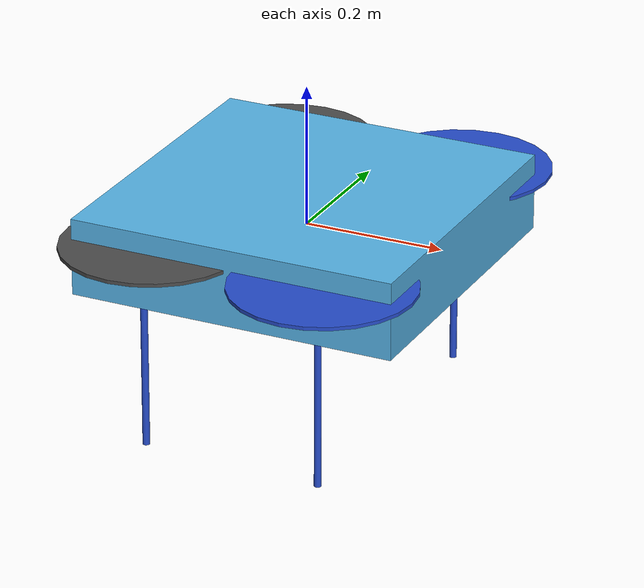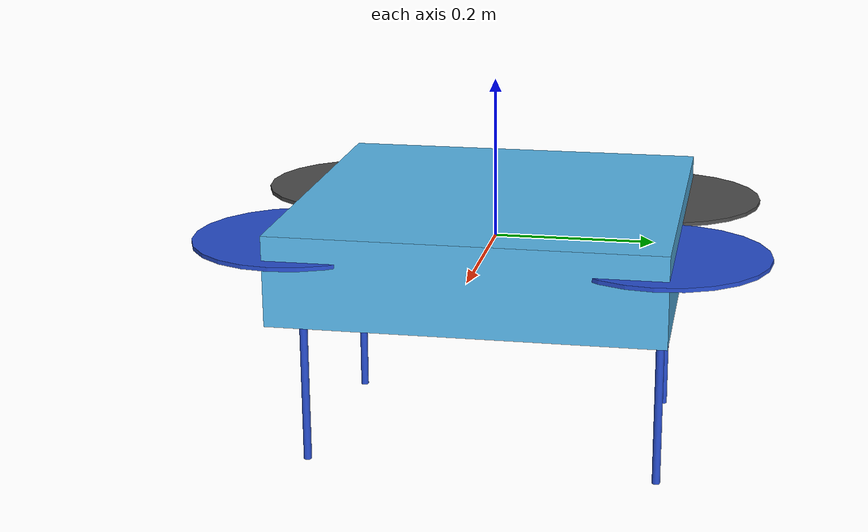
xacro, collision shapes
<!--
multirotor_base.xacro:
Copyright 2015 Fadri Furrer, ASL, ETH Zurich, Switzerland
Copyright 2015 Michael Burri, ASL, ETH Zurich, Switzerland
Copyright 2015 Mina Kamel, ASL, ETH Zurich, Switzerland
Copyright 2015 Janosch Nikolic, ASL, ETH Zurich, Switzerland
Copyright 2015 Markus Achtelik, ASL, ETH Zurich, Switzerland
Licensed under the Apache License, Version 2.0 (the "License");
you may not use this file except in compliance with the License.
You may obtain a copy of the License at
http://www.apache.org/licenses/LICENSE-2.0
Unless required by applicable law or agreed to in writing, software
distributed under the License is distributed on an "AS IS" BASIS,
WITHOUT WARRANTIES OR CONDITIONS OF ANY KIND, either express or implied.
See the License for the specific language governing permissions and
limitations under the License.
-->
<?xml version="1.0"?>

<robot name="iris"
    xmlns:xacro="http://ros.org/wiki/xacro">
    <!-- Properties -->
    <xacro:property name="namespace" value="" />
    <xacro:property name="rotor_velocity_slowdown_sim" value="10" />
    <xacro:property name="mesh_file" value="iris.stl" />
    <xacro:property name="mesh_scale" value="1 1 1"/>
    <xacro:property name="mesh_scale_prop" value="1 1 1"/>
    <xacro:property name="mass" value="1.5" />
    <!-- [kg] -->
    <xacro:property name="body_width" value="0.47" />
    <xacro:property name="body_height" value="0.11" />
    <xacro:property name="mass_rotor" value="0.005" />
    <!-- [kg] -->
    <xacro:property name="arm_length_front_x" value="0.13" />
    <xacro:property name="arm_length_back_x" value="0.13" />
    <xacro:property name="arm_length_front_y" value="0.22" />
    <xacro:property name="arm_length_back_y" value="0.2" />
    <xacro:property name="rotor_offset_top" value="0.023" />
    <xacro:property name="radius_rotor" value="0.128" />
    <xacro:property name="motor_constant" value="8.54858e-06" />
    <!-- [kg.m/s^2] -->
    <xacro:property name="moment_constant" value="0.06" />
    <xacro:property name="time_constant_up" value="0.0125" />
    <xacro:property name="time_constant_down" value="0.025" />
    <xacro:property name="max_rot_velocity" value="1100" />
    <!-- [rad/s] -->
    <xacro:property name="sin30" value="0.5" />
    <xacro:property name="cos30" value="0.866025403784" />
    <xacro:property name="sqrt2" value="1.4142135623730951" />
    <xacro:property name="rotor_drag_coefficient" value="1.75e-04" />
    <xacro:property name="rolling_moment_coefficient" value="0.000001" />
    <xacro:property name="color" value="Blue" />

    <!-- Property Blocks -->
    <xacro:property name="body_inertia">
        <inertia ixx="${1/12 * mass * (body_height * body_height + body_width * body_width)}" iyy="${1/12 * mass * (body_height * body_height + body_width * body_width)}" izz="${1/12 * mass * (body_width * body_width + body_width * body_width)}" ixy="0.0" ixz="0.0" iyz="0.0" />
        <!-- [kg.m^2] [kg.m^2] [kg.m^2] [kg.m^2] [kg.m^2] [kg.m^2] -->
    </xacro:property>

    <!-- inertia of a single rotor, assuming it is a cuboid. Height=3mm, width=15mm -->
    <xacro:property name="rotor_inertia">
        <inertia ixx="${1/12 * mass_rotor * (0.015 * 0.015 + 0.003 * 0.003) * rotor_velocity_slowdown_sim}" iyy="${1/12 * mass_rotor * (4 * radius_rotor * radius_rotor + 0.003 * 0.003) * rotor_velocity_slowdown_sim}" izz="${1/12 * mass_rotor * (4 * radius_rotor * radius_rotor + 0.015 * 0.015) * rotor_velocity_slowdown_sim}" ixy="0.0" ixz="0.0" iyz="0.0" />
        <!-- [kg.m^2] [kg.m^2] [kg.m^2] [kg.m^2] [kg.m^2] [kg.m^2] -->
    </xacro:property>

    <!-- Included URDF Files -->
    <xacro:include filename="$(find px4_controller)/models/multirotor_base.xacro" />

    <!-- Instantiate multirotor_base_macro once -->
    <xacro:multirotor_base_macro robot_namespace="${namespace}" mass="${mass}" body_width="${body_width}" body_height="${body_height}" mesh_file="${mesh_file}" mesh_scale="${mesh_scale}" color="${color}">
        <xacro:insert_block name="body_inertia" />
    </xacro:multirotor_base_macro>

    <!-- Instantiate rotors -->
    <xacro:vertical_rotor robot_namespace="${namespace}" suffix="front_right" direction="ccw" motor_constant="${motor_constant}" moment_constant="${moment_constant}" parent="base_link" mass_rotor="${mass_rotor}" radius_rotor="${radius_rotor}" time_constant_up="${time_constant_up}" time_constant_down="${time_constant_down}" max_rot_velocity="${max_rot_velocity}" motor_number="0" rotor_drag_coefficient="${rotor_drag_coefficient}" rolling_moment_coefficient="${rolling_moment_coefficient}" mesh="iris_prop" mesh_scale="${mesh_scale_prop}" color="Blue">
        <origin xyz="${arm_length_front_x} -${arm_length_front_y} ${rotor_offset_top}" rpy="0 0 0" />
        <xacro:insert_block name="rotor_inertia" />
    </xacro:vertical_rotor>

    <xacro:vertical_rotor robot_namespace="${namespace}" suffix="back_left" direction="ccw" motor_constant="${motor_constant}" moment_constant="${moment_constant}" parent="base_link" mass_rotor="${mass_rotor}" radius_rotor="${radius_rotor}" time_constant_up="${time_constant_up}" time_constant_down="${time_constant_down}" max_rot_velocity="${max_rot_velocity}" motor_number="1" rotor_drag_coefficient="${rotor_drag_coefficient}" rolling_moment_coefficient="${rolling_moment_coefficient}" mesh="iris_prop" mesh_scale="${mesh_scale_prop}" color="DarkGrey">
        <origin xyz="-${arm_length_back_x} ${arm_length_back_y} ${rotor_offset_top}" rpy="0 0 0" />
        <xacro:insert_block name="rotor_inertia" />
    </xacro:vertical_rotor>

    <xacro:vertical_rotor robot_namespace="${namespace}" suffix="front_left" direction="cw" motor_constant="${motor_constant}" moment_constant="${moment_constant}" parent="base_link" mass_rotor="${mass_rotor}" radius_rotor="${radius_rotor}" time_constant_up="${time_constant_up}" time_constant_down="${time_constant_down}" max_rot_velocity="${max_rot_velocity}" motor_number="2" rotor_drag_coefficient="${rotor_drag_coefficient}" rolling_moment_coefficient="${rolling_moment_coefficient}" mesh="iris_prop" mesh_scale="${mesh_scale_prop}" color="Blue">
        <origin xyz="${arm_length_front_x} ${arm_length_front_y} ${rotor_offset_top}" rpy="0 0 0" />
        <xacro:insert_block name="rotor_inertia" />
    </xacro:vertical_rotor>

    <xacro:vertical_rotor robot_namespace="${namespace}" suffix="back_right" direction="cw" motor_constant="${motor_constant}" moment_constant="${moment_constant}" parent="base_link" mass_rotor="${mass_rotor}" radius_rotor="${radius_rotor}" time_constant_up="${time_constant_up}" time_constant_down="${time_constant_down}" max_rot_velocity="${max_rot_velocity}" motor_number="3" rotor_drag_coefficient="${rotor_drag_coefficient}" rolling_moment_coefficient="${rolling_moment_coefficient}" mesh="iris_prop" mesh_scale="${mesh_scale_prop}" color="DarkGrey">
        <origin xyz="-${arm_length_back_x} -${arm_length_back_y} ${rotor_offset_top}" rpy="0 0 0" />
        <xacro:insert_block name="rotor_inertia" />
    </xacro:vertical_rotor>

</robot>

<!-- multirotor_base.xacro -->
<robot xmlns:xacro="http://ros.org/wiki/xacro">
    <!-- Main multirotor link -->
    <xacro:property name="length" value="0.3" />
    <xacro:macro name="multirotor_base_macro" params="robot_namespace mass body_width body_height mesh_file mesh_scale color *inertia">
        <link name="base_link">
            <collision>
                <origin xyz="0.123 0.22 -0.12" rpy="0 0 0"/>
                <geometry>
                    <cylinder length="${length}" radius="0.005"/>
                </geometry>
            </collision>
            <visual>
                <origin xyz="0.123 0.22 -0.12" rpy="0 0 0"/>
                <geometry>
                    <cylinder length="${length}" radius="0.005"/>
                </geometry>
            </visual>
            <collision>
                <origin xyz="0.123 -0.22 -0.12" rpy="0 0 0"/>
                <geometry>
                    <cylinder length="${length}" radius="0.005"/>
                </geometry>
            </collision>
            <visual>
                <origin xyz="0.123 -0.22 -0.12" rpy="0 0 0"/>
                <geometry>
                    <cylinder length="${length}" radius="0.005"/>
                </geometry>
            </visual>
            <collision>
                <origin xyz="-0.140 0.21 -0.12" rpy="0 0 0"/>
                <geometry>
                    <cylinder length="${length}" radius="0.005"/>
                </geometry>
            </collision>
            <visual>
                <origin xyz="-0.140 0.21 -0.12" rpy="0 0 0"/>
                <geometry>
                    <cylinder length="${length}" radius="0.005"/>
                </geometry>
            </visual>
            <collision>
                <origin xyz="-0.140 -0.21 -0.12" rpy="0 0 0"/>
                <geometry>
                    <cylinder length="${length}" radius="0.005"/>
                </geometry>
            </collision>
            <visual>
                <origin xyz="-0.140 -0.21 -0.12" rpy="0 0 0"/>
                <geometry>
                    <cylinder length="${length}" radius="0.005"/>
                </geometry>
            </visual>
        </link>

        <joint name="base_joint" type="fixed">
            <origin xyz="0 0 0" rpy="0 0 0" />
            <parent link="base_link" />
            <child link="base_link_inertia" />
        </joint>

        <link name="base_link_inertia">
            <inertial>
                <mass value="${mass}" />
                <!-- [kg] -->
                <origin xyz="0 0 0" />
                <xacro:insert_block name="inertia" />
            </inertial>

            <visual>
                <origin xyz="0 0 0" rpy="0 0 0" />
                <geometry>
                    <mesh filename="package://px4_controller/models/meshes/${mesh_file}" scale="${mesh_scale}" />

                </geometry>
            </visual>

            <collision>
                <origin xyz="0 0 0" rpy="0 0 0" />
                <geometry>
                    <box size="${body_width} ${body_width} ${body_height}" />
                </geometry>
            </collision>
        </link>

        <!-- attach multirotor_base_plugin to the base_link -->
        <gazebo>
            <plugin filename="package://px4_controller/models/libgazebo_multirotor_base_plugin.so" name="rosbag">
                <robotNamespace>${robot_namespace}</robotNamespace>
                <linkName>base_link</linkName>
                <rotorVelocitySlowdownSim>${rotor_velocity_slowdown_sim}</rotorVelocitySlowdownSim>
            </plugin>
        </gazebo>
        <gazebo reference="base_link">
            <material>Gazebo/${color}</material>
            <collision name='base_link_inertia_collision'>
                <surface>
                    <contact>
                        <ode>
                            <min_depth>0.001</min_depth>
                            <max_vel>0.0</max_vel>
                        </ode>
                    </contact>
                    <friction>
                        <ode/>
                    </friction>
                </surface>
            </collision>
        </gazebo>
    </xacro:macro>

    <!-- Rotor joint and link -->
    <xacro:macro name="vertical_rotor" params="robot_namespace suffix direction motor_constant moment_constant parent mass_rotor radius_rotor time_constant_up time_constant_down max_rot_velocity motor_number rotor_drag_coefficient rolling_moment_coefficient color mesh mesh_scale *origin *inertia">
        <joint name="rotor_${motor_number}_joint" type="continuous">
            <xacro:insert_block name="origin" />
            <axis xyz="0 0 1" />
            <!-- TODO(ff): not currently set because it's not yet supported -->
            <parent link="${parent}" />
            <child link="rotor_${motor_number}" />

        </joint>
        <!-- TODO(ff): not currently set because it's not yet supported -->
        <link name="rotor_${motor_number}">
            <inertial>
                <mass value="${mass_rotor}" />
                <!-- [kg] -->
                <xacro:insert_block name="inertia" />
            </inertial>
            <visual>
                <geometry>

                    <mesh filename="package://px4_controller/models/meshes/${mesh}_${direction}.dae" scale="${mesh_scale}" />
                </geometry>
            </visual>
            <collision>
                <geometry>
                    <cylinder length="0.005" radius="${radius_rotor}" />
                </geometry>
            </collision>
        </link>
        <gazebo>
            <plugin name="${suffix}_motor_model" filename="libgazebo_motor_model.so">
                <robotNamespace>${robot_namespace}</robotNamespace>
                <jointName>rotor_${motor_number}_joint</jointName>
                <linkName>rotor_${motor_number}</linkName>
                <turningDirection>${direction}</turningDirection>
                <timeConstantUp>${time_constant_up}</timeConstantUp>
                <timeConstantDown>${time_constant_down}</timeConstantDown>
                <maxRotVelocity>${max_rot_velocity}</maxRotVelocity>
                <motorConstant>${motor_constant}</motorConstant>
                <momentConstant>${moment_constant}</momentConstant>
                <commandSubTopic>/gazebo/command/motor_speed</commandSubTopic>
                <motorNumber>${motor_number}</motorNumber>
                <rotorDragCoefficient>${rotor_drag_coefficient}</rotorDragCoefficient>
                <rollingMomentCoefficient>${rolling_moment_coefficient}</rollingMomentCoefficient>
                <motorSpeedPubTopic>/motor_speed/${motor_number}</motorSpeedPubTopic>
                <rotorVelocitySlowdownSim>${rotor_velocity_slowdown_sim}</rotorVelocitySlowdownSim>
            </plugin>
        </gazebo>
        <gazebo reference="rotor_${motor_number}">
            <material>Gazebo/${color}</material>
        </gazebo>
    </xacro:macro>
</robot>
